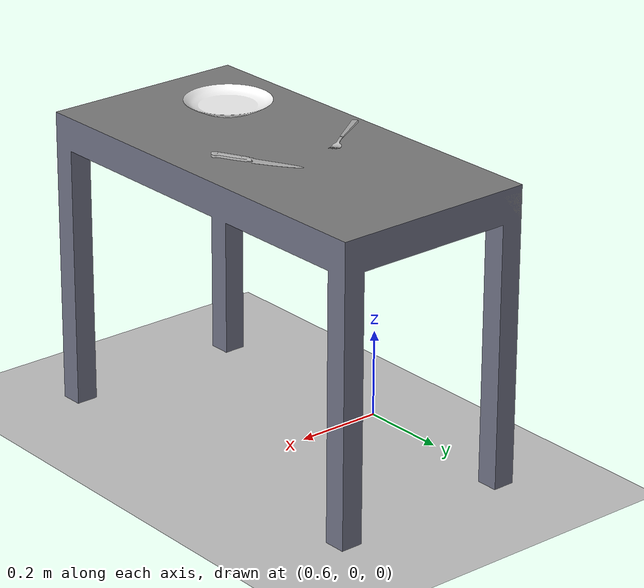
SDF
<sdf version="1.7">
 <world name="default">
  <light name="sun" type="directional">
   <pose>0 0 10 0 -0 0</pose>
   <diffuse>0.8 0.8 0.8 1</diffuse>
   <specular>0.2 0.2 0.2 1</specular>
   <attenuation>
    <range>1000</range>
    <constant>0.9</constant>
    <linear>0.01</linear>
    <quadratic>0.001</quadratic>
   </attenuation>
   <direction>-0.5 0.1 -0.9</direction>
   <spot><inner_angle>0</inner_angle><outer_angle>0</outer_angle><falloff>0</falloff></spot>
  </light>
  <model name="ground_plane">
   <static>1</static>
   <link name="link">
    <collision name="collision">
     <geometry><plane><normal>0 0 1</normal><size>100 100</size></plane></geometry>
     <surface>
      <contact><collide_bitmask>65535</collide_bitmask></contact>
      <friction><ode><mu>100</mu><mu2>50</mu2></ode></friction>
     </surface>
    </collision>
    <visual name="visual">
     <cast_shadows>0</cast_shadows>
     <geometry><plane><normal>0 0 1</normal><size>100 100</size></plane></geometry>
     <material>
      <script><uri>file://media/materials/scripts/gazebo.material</uri><name>Gazebo/Grey</name></script>
     </material>
    </visual>
   </link>
  </model>
  <gravity>0 0 -9.8</gravity>
  <magnetic_field>6e-06 2.3e-05 -4.2e-05</magnetic_field>
  <atmosphere type="adiabatic"/>
  <physics type="ode">
   <max_step_size>0.001</max_step_size>
   <real_time_factor>1</real_time_factor>
   <real_time_update_rate>1000</real_time_update_rate>
  </physics>
  <scene><ambient>0.4 0.4 0.4 1</ambient><background>0.7 0.7 0.7 1</background><shadows>1</shadows></scene>
  <spherical_coordinates>
   <surface_model>EARTH_WGS84</surface_model>
   <latitude_deg>0</latitude_deg>
   <longitude_deg>0</longitude_deg>
   <elevation>0</elevation>
   <heading_deg>0</heading_deg>
  </spherical_coordinates>
  <model name="table_dining">
   <link name="table_link">
    <visual name="visual">
     <geometry><mesh><uri>model://table_dining/meshes/table2.dae</uri><scale>1 1 1</scale></mesh></geometry>
     <material>
      <script>
       <uri>model://table_dining/materials/scripts</uri>
       <uri>model://table_dining/materials/textures</uri>
       <name>dining_table</name>
      </script>
     </material>
    </visual>
    <inertial>
     <mass>1</mass>
     <inertia><ixx>0.083</ixx><ixy>0</ixy><ixz>0</ixz><iyy>0.083</iyy><iyz>0</iyz><izz>0.083</izz></inertia>
    </inertial>
    <collision name="collision">
     <geometry><mesh><uri>model://table_dining/meshes/table2.dae</uri><scale>1 1 1</scale></mesh></geometry>
    </collision>
   </link>
   <static>1</static>
   <pose>0.839465 -0.011278 0.343304 0 0 -1.56096</pose>
  </model>
  <model name="plate">
   <link name="plate_link">
    <visual name="visual">
     <geometry><mesh><uri>model://plate/meshes/plate.dae</uri><scale>1 1 1</scale></mesh></geometry>
    </visual>
    <inertial>
     <mass>1</mass>
     <inertia><ixx>0.0083</ixx><ixy>0</ixy><ixz>0</ixz><iyy>0.0083</iyy><iyz>0</iyz><izz>0.0083</izz></inertia>
    </inertial>
    <collision name="collision"><geometry><box><size>0.189 0.189 0.0187</size></box></geometry></collision>
   </link>
   <static>0</static>
   <pose>0.871599 -0.163563 0.741887 0 -0 0</pose>
  </model>
  <model name="fork">
   <link name="fork_link">
    <visual name="visual">
     <geometry><mesh><uri>model://fork/meshes/fork.dae</uri><scale>1 1 1</scale></mesh></geometry>
    </visual>
    <inertial>
     <mass>1</mass>
     <inertia><ixx>0.0083</ixx><ixy>0</ixy><ixz>0</ixz><iyy>0.0083</iyy><iyz>0</iyz><izz>0.0083</izz></inertia>
    </inertial>
    <collision name="collision"><geometry><box><size>0.0197 0.19 0.0117</size></box></geometry></collision>
   </link>
   <static>0</static>
   <allow_auto_disable>0</allow_auto_disable>
   <pose>0.797173 0.123396 0.740037 0 0 -0.961489</pose>
  </model>
  <model name="knife">
   <link name="knife_link">
    <visual name="visual">
     <geometry><mesh><uri>model://knife/meshes/knife.dae</uri><scale>1 1 1</scale></mesh></geometry>
    </visual>
    <inertial>
     <mass>1</mass>
     <inertia><ixx>0.0083</ixx><ixy>0</ixy><ixz>0</ixz><iyy>0.0083</iyy><iyz>0</iyz><izz>0.0083</izz></inertia>
    </inertial>
    <collision name="collision"><geometry><box><size>0.0245 0.208 0.00777</size></box></geometry></collision>
   </link>
   <static>0</static>
   <allow_auto_disable>0</allow_auto_disable>
   <pose>0.961001 0.022948 0.694843 0 -0 0.487769</pose>
  </model>
 </world>
</sdf>
